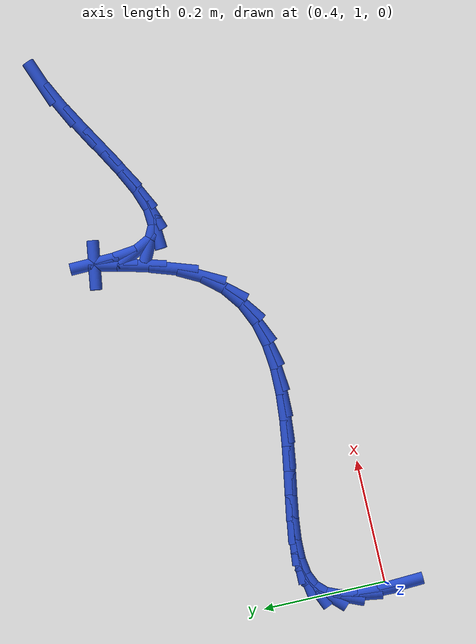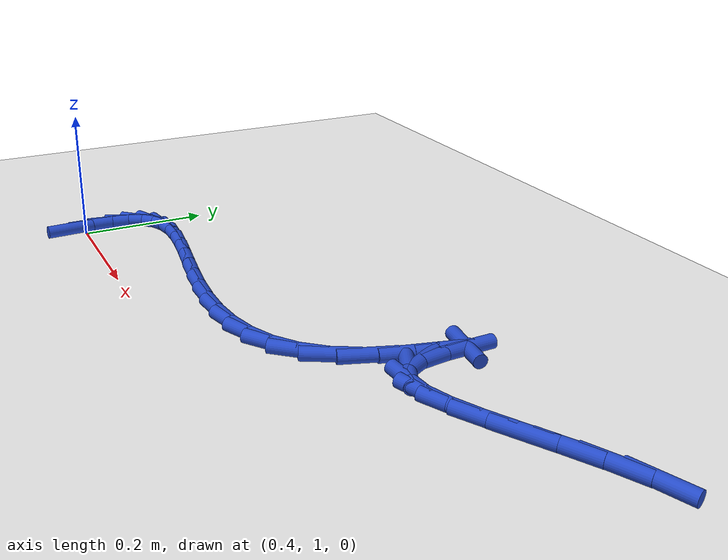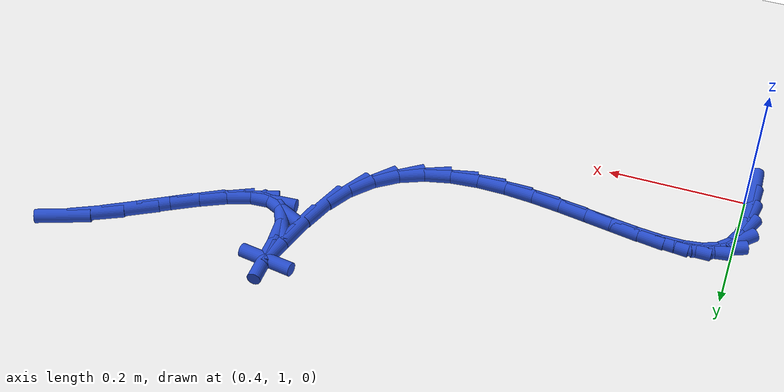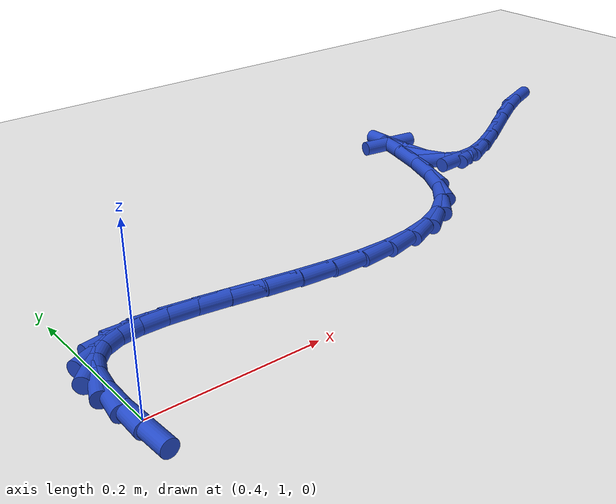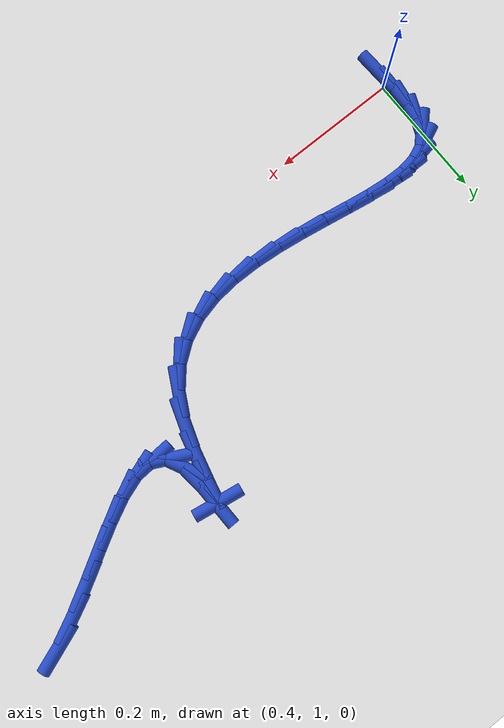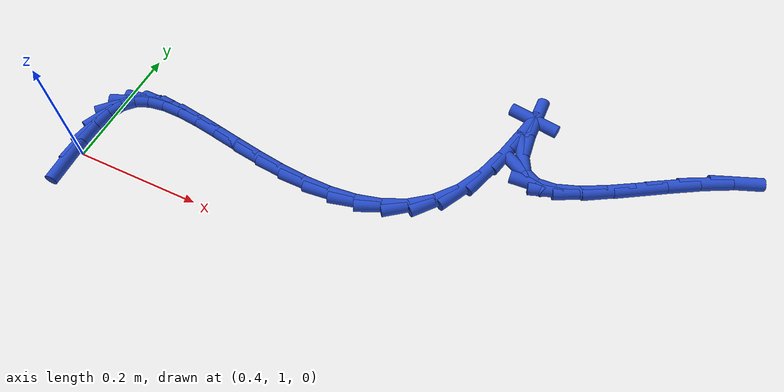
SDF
<sdf version="1.6">
 <world name="default">
  <model name="ground_plane">
   <static>1</static>
   <link name="link">
    <collision name="collision">
     <geometry><plane><normal>0 0 1</normal><size>100 100</size></plane></geometry>
     <surface><friction><ode><mu>100</mu><mu2>50</mu2></ode></friction></surface>
    </collision>
    <visual name="visual">
     <cast_shadows>0</cast_shadows>
     <geometry><plane><normal>0 0 1</normal><size>100 100</size></plane></geometry>
     <material>
      <script><uri>file://media/materials/scripts/gazebo.material</uri><name>Gazebo/WhiteGlow</name></script>
     </material>
    </visual>
   </link>
  </model>
  <model name="line">
   <link name="link_31">
    <pose>0.390982447569253 0.9789147145272856 0.01 0 1.57 -1.5247035895243215</pose>
    <collision name="collision">
     <geometry><cylinder><radius>0.01</radius><length>0.08</length></cylinder></geometry>
    </collision>
    <visual name="visual">
     <material>
      <script><name>Gazebo/Blue</name><uri>file://media/materials/scripts/gazebo.material</uri></script>
     </material>
     <geometry><cylinder><radius>0.01</radius><length>0.08</length></cylinder></geometry>
    </visual>
   </link>
   <link name="link_32">
    <pose>0.3893243388053978 1.0148625548145471 0.01 0 1.57 1.5453527774657991</pose>
    <collision name="collision">
     <geometry><cylinder><radius>0.01</radius><length>0.08</length></cylinder></geometry>
    </collision>
    <visual name="visual">
     <material>
      <script><name>Gazebo/Blue</name><uri>file://media/materials/scripts/gazebo.material</uri></script>
     </material>
     <geometry><cylinder><radius>0.01</radius><length>0.08</length></cylinder></geometry>
    </visual>
   </link>
   <link name="link_33">
    <pose>0.3901488056899858 1.0472593306489026 0.01 0 1.57 1.411977918099629</pose>
    <collision name="collision">
     <geometry><cylinder><radius>0.01</radius><length>0.08</length></cylinder></geometry>
    </collision>
    <visual name="visual">
     <material>
      <script><name>Gazebo/Blue</name><uri>file://media/materials/scripts/gazebo.material</uri></script>
     </material>
     <geometry><cylinder><radius>0.01</radius><length>0.08</length></cylinder></geometry>
    </visual>
   </link>
   <link name="link_34">
    <pose>0.39460465277649315 1.075079280934882 0.01 0 1.57 1.1768186514291217</pose>
    <collision name="collision">
     <geometry><cylinder><radius>0.01</radius><length>0.08</length></cylinder></geometry>
    </collision>
    <visual name="visual">
     <material>
      <script><name>Gazebo/Blue</name><uri>file://media/materials/scripts/gazebo.material</uri></script>
     </material>
     <geometry><cylinder><radius>0.01</radius><length>0.08</length></cylinder></geometry>
    </visual>
   </link>
   <link name="link_35">
    <pose>0.40384068461839656 1.0972966445770143 0.01 0 1.57 0.8036534141712126</pose>
    <collision name="collision">
     <geometry><cylinder><radius>0.01</radius><length>0.08</length></cylinder></geometry>
    </collision>
    <visual name="visual">
     <material>
      <script><name>Gazebo/Blue</name><uri>file://media/materials/scripts/gazebo.material</uri></script>
     </material>
     <geometry><cylinder><radius>0.01</radius><length>0.08</length></cylinder></geometry>
    </visual>
   </link>
   <link name="link_36">
    <pose>0.4189405103541768 1.112958087372414 0.01 0 1.57 0.4150669243652497</pose>
    <collision name="collision">
     <geometry><cylinder><radius>0.01</radius><length>0.08</length></cylinder></geometry>
    </collision>
    <visual name="visual">
     <material>
      <script><name>Gazebo/Blue</name><uri>file://media/materials/scripts/gazebo.material</uri></script>
     </material>
     <geometry><cylinder><radius>0.01</radius><length>0.08</length></cylinder></geometry>
    </visual>
   </link>
   <link name="link_37">
    <pose>0.4399801688791699 1.1222296050860623 0.01 0 1.57 0.14845639626658577</pose>
    <collision name="collision">
     <geometry><cylinder><radius>0.01</radius><length>0.08</length></cylinder></geometry>
    </collision>
    <visual name="visual">
     <material>
      <script><name>Gazebo/Blue</name><uri>file://media/materials/scripts/gazebo.material</uri></script>
     </material>
     <geometry><cylinder><radius>0.01</radius><length>0.08</length></cylinder></geometry>
    </visual>
   </link>
   <link name="link_38">
    <pose>0.4662433417337023 1.126157439141993 0.01 0 1.57 -0.011247543446740244</pose>
    <collision name="collision">
     <geometry><cylinder><radius>0.01</radius><length>0.08</length></cylinder></geometry>
    </collision>
    <visual name="visual">
     <material>
      <script><name>Gazebo/Blue</name><uri>file://media/materials/scripts/gazebo.material</uri></script>
     </material>
     <geometry><cylinder><radius>0.01</radius><length>0.08</length></cylinder></geometry>
    </visual>
   </link>
   <link name="link_39">
    <pose>0.4969923381550465 1.1258115738838583 0.01 0 1.57 -0.1025341059133014</pose>
    <collision name="collision">
     <geometry><cylinder><radius>0.01</radius><length>0.08</length></cylinder></geometry>
    </collision>
    <visual name="visual">
     <material>
      <script><name>Gazebo/Blue</name><uri>file://media/materials/scripts/gazebo.material</uri></script>
     </material>
     <geometry><cylinder><radius>0.01</radius><length>0.08</length></cylinder></geometry>
    </visual>
   </link>
   <link name="link_40">
    <pose>0.531489467380474 1.1222619936553102 0.01 0 1.57 -0.15038043305676224</pose>
    <collision name="collision">
     <geometry><cylinder><radius>0.01</radius><length>0.08</length></cylinder></geometry>
    </collision>
    <visual name="visual">
     <material>
      <script><name>Gazebo/Blue</name><uri>file://media/materials/scripts/gazebo.material</uri></script>
     </material>
     <geometry><cylinder><radius>0.01</radius><length>0.08</length></cylinder></geometry>
    </visual>
   </link>
   <link name="link_41">
    <pose>0.5689970386472569 1.1165786828 0.01 0 1.57 -0.16800905003659292</pose>
    <collision name="collision">
     <geometry><cylinder><radius>0.01</radius><length>0.08</length></cylinder></geometry>
    </collision>
    <visual name="visual">
     <material>
      <script><name>Gazebo/Blue</name><uri>file://media/materials/scripts/gazebo.material</uri></script>
     </material>
     <geometry><cylinder><radius>0.01</radius><length>0.08</length></cylinder></geometry>
    </visual>
   </link>
   <link name="link_42">
    <pose>0.6087773611926669 1.10983162566158 0.01 0 1.57 -0.161730169987351</pose>
    <collision name="collision">
     <geometry><cylinder><radius>0.01</radius><length>0.08</length></cylinder></geometry>
    </collision>
    <visual name="visual">
     <material>
      <script><name>Gazebo/Blue</name><uri>file://media/materials/scripts/gazebo.material</uri></script>
     </material>
     <geometry><cylinder><radius>0.01</radius><length>0.08</length></cylinder></geometry>
    </visual>
   </link>
   <link name="link_43">
    <pose>0.6500927442539758 1.1030908065837022 0.01 0 1.57 -0.1337077071958004</pose>
    <collision name="collision">
     <geometry><cylinder><radius>0.01</radius><length>0.08</length></cylinder></geometry>
    </collision>
    <visual name="visual">
     <material>
      <script><name>Gazebo/Blue</name><uri>file://media/materials/scripts/gazebo.material</uri></script>
     </material>
     <geometry><cylinder><radius>0.01</radius><length>0.08</length></cylinder></geometry>
    </visual>
   </link>
   <link name="link_44">
    <pose>0.6922054970684561 1.0974262099100183 0.01 0 1.57 -0.08323591101266663</pose>
    <collision name="collision">
     <geometry><cylinder><radius>0.01</radius><length>0.08</length></cylinder></geometry>
    </collision>
    <visual name="visual">
     <material>
      <script><name>Gazebo/Blue</name><uri>file://media/materials/scripts/gazebo.material</uri></script>
     </material>
     <geometry><cylinder><radius>0.01</radius><length>0.08</length></cylinder></geometry>
    </visual>
   </link>
   <link name="link_45">
    <pose>0.7343779288733792 1.0939078199841799 0.01 0 1.57 -0.007282750099045498</pose>
    <collision name="collision">
     <geometry><cylinder><radius>0.01</radius><length>0.08</length></cylinder></geometry>
    </collision>
    <visual name="visual">
     <material>
      <script><name>Gazebo/Blue</name><uri>file://media/materials/scripts/gazebo.material</uri></script>
     </material>
     <geometry><cylinder><radius>0.01</radius><length>0.08</length></cylinder></geometry>
    </visual>
   </link>
   <link name="link_46">
    <pose>0.7758723489060166 1.0936056211498393 0.01 0 1.57 0.09907831530717444</pose>
    <collision name="collision">
     <geometry><cylinder><radius>0.01</radius><length>0.08</length></cylinder></geometry>
    </collision>
    <visual name="visual">
     <material>
      <script><name>Gazebo/Blue</name><uri>file://media/materials/scripts/gazebo.material</uri></script>
     </material>
     <geometry><cylinder><radius>0.01</radius><length>0.08</length></cylinder></geometry>
    </visual>
   </link>
   <link name="link_47">
    <pose>0.8159510664036412 1.0975895977506478 0.01 0 1.57 0.24147163791698817</pose>
    <collision name="collision">
     <geometry><cylinder><radius>0.01</radius><length>0.08</length></cylinder></geometry>
    </collision>
    <visual name="visual">
     <material>
      <script><name>Gazebo/Blue</name><uri>file://media/materials/scripts/gazebo.material</uri></script>
     </material>
     <geometry><cylinder><radius>0.01</radius><length>0.08</length></cylinder></geometry>
    </visual>
   </link>
   <link name="link_48">
    <pose>0.8538763906035245 1.106929734130258 0.01 0 1.57 0.4228746348597719</pose>
    <collision name="collision">
     <geometry><cylinder><radius>0.01</radius><length>0.08</length></cylinder></geometry>
    </collision>
    <visual name="visual">
     <material>
      <script><name>Gazebo/Blue</name><uri>file://media/materials/scripts/gazebo.material</uri></script>
     </material>
     <geometry><cylinder><radius>0.01</radius><length>0.08</length></cylinder></geometry>
    </visual>
   </link>
   <link name="link_49">
    <pose>0.8889106307429382 1.1226960146323213 0.01 0 1.57 0.6375303209361082</pose>
    <collision name="collision">
     <geometry><cylinder><radius>0.01</radius><length>0.08</length></cylinder></geometry>
    </collision>
    <visual name="visual">
     <material>
      <script><name>Gazebo/Blue</name><uri>file://media/materials/scripts/gazebo.material</uri></script>
     </material>
     <geometry><cylinder><radius>0.01</radius><length>0.08</length></cylinder></geometry>
    </visual>
   </link>
   <link name="link_50">
    <pose>0.9203160960591543 1.1459584236004896 0.01 0 1.57 0.8665803744971301</pose>
    <collision name="collision">
     <geometry><cylinder><radius>0.01</radius><length>0.08</length></cylinder></geometry>
    </collision>
    <visual name="visual">
     <material>
      <script><name>Gazebo/Blue</name><uri>file://media/materials/scripts/gazebo.material</uri></script>
     </material>
     <geometry><cylinder><radius>0.01</radius><length>0.08</length></cylinder></geometry>
    </visual>
   </link>
   <link name="link_51">
    <pose>0.9473550957894448 1.1777869453784149 0.01 0 1.57 1.084192181204953</pose>
    <collision name="collision">
     <geometry><cylinder><radius>0.01</radius><length>0.08</length></cylinder></geometry>
    </collision>
    <visual name="visual">
     <material>
      <script><name>Gazebo/Blue</name><uri>file://media/materials/scripts/gazebo.material</uri></script>
     </material>
     <geometry><cylinder><radius>0.01</radius><length>0.08</length></cylinder></geometry>
    </visual>
   </link>
   <link name="link_52">
    <pose>0.9692901415719178 1.2192493929146635 0.01 0 1.57 1.248725836965864</pose>
    <collision name="collision">
     <geometry><cylinder><radius>0.01</radius><length>0.08</length></cylinder></geometry>
    </collision>
    <visual name="visual">
     <material>
      <script><name>Gazebo/Blue</name><uri>file://media/materials/scripts/gazebo.material</uri></script>
     </material>
     <geometry><cylinder><radius>0.01</radius><length>0.08</length></cylinder></geometry>
    </visual>
   </link>
   <link name="link_53">
    <pose>0.9856704347898763 1.2683379164565447 0.01 0 1.57 1.3287912689701837</pose>
    <collision name="collision">
     <geometry><cylinder><radius>0.01</radius><length>0.08</length></cylinder></geometry>
    </collision>
    <visual name="visual">
     <material>
      <script><name>Gazebo/Blue</name><uri>file://media/materials/scripts/gazebo.material</uri></script>
     </material>
     <geometry><cylinder><radius>0.01</radius><length>0.08</length></cylinder></geometry>
    </visual>
   </link>
   <link name="link_54">
    <pose>0.996902928241898 1.3138425441694352 0.01 0 1.57 1.3453167303175664</pose>
    <collision name="collision">
     <geometry><cylinder><radius>0.01</radius><length>0.08</length></cylinder></geometry>
    </collision>
    <visual name="visual">
     <material>
      <script><name>Gazebo/Blue</name><uri>file://media/materials/scripts/gazebo.material</uri></script>
     </material>
     <geometry><cylinder><radius>0.01</radius><length>0.08</length></cylinder></geometry>
    </visual>
   </link>
   <link name="link_55">
    <pose>1.0035543027198472 1.3428397115997508 0.01 0 1.57 -0.1525639041829774</pose>
    <collision name="collision">
     <geometry><cylinder><radius>0.01</radius><length>0.08</length></cylinder></geometry>
    </collision>
    <visual name="visual">
     <material>
      <script><name>Gazebo/Blue</name><uri>file://media/materials/scripts/gazebo.material</uri></script>
     </material>
     <geometry><cylinder><radius>0.01</radius><length>0.08</length></cylinder></geometry>
    </visual>
   </link>
   <link name="link_56">
    <pose>1.00619513793922 1.3424336601859812 0.01 0 1.57 -1.549513623553215</pose>
    <collision name="collision">
     <geometry><cylinder><radius>0.01</radius><length>0.08</length></cylinder></geometry>
    </collision>
    <visual name="visual">
     <material>
      <script><name>Gazebo/Blue</name><uri>file://media/materials/scripts/gazebo.material</uri></script>
     </material>
     <geometry><cylinder><radius>0.01</radius><length>0.08</length></cylinder></geometry>
    </visual>
   </link>
   <link name="link_57">
    <pose>1.0068790258110933 1.3103050060140167 0.01 0 1.57 -1.4582031845294052</pose>
    <collision name="collision">
     <geometry><cylinder><radius>0.01</radius><length>0.08</length></cylinder></geometry>
    </collision>
    <visual name="visual">
     <material>
      <script><name>Gazebo/Blue</name><uri>file://media/materials/scripts/gazebo.material</uri></script>
     </material>
     <geometry><cylinder><radius>0.01</radius><length>0.08</length></cylinder></geometry>
    </visual>
   </link>
   <link name="link_58">
    <pose>1.0113692427907868 1.2705936492558776 0.01 0 1.57 -1.1039511954821721</pose>
    <collision name="collision">
     <geometry><cylinder><radius>0.01</radius><length>0.08</length></cylinder></geometry>
    </collision>
    <visual name="visual">
     <material>
      <script><name>Gazebo/Blue</name><uri>file://media/materials/scripts/gazebo.material</uri></script>
     </material>
     <geometry><cylinder><radius>0.01</radius><length>0.08</length></cylinder></geometry>
    </visual>
   </link>
   <link name="link_59">
    <pose>1.0243493915601605 1.244839555315182 0.01 0 1.57 -0.46505238405204813</pose>
    <collision name="collision">
     <geometry><cylinder><radius>0.01</radius><length>0.08</length></cylinder></geometry>
    </collision>
    <visual name="visual">
     <material>
      <script><name>Gazebo/Blue</name><uri>file://media/materials/scripts/gazebo.material</uri></script>
     </material>
     <geometry><cylinder><radius>0.01</radius><length>0.08</length></cylinder></geometry>
    </visual>
   </link>
   <link name="link_60">
    <pose>1.0454705786687613 1.2342418475220112 0.01 0 1.57 0.0676781002996856</pose>
    <collision name="collision">
     <geometry><cylinder><radius>0.01</radius><length>0.08</length></cylinder></geometry>
    </collision>
    <visual name="visual">
     <material>
      <script><name>Gazebo/Blue</name><uri>file://media/materials/scripts/gazebo.material</uri></script>
     </material>
     <geometry><cylinder><radius>0.01</radius><length>0.08</length></cylinder></geometry>
    </visual>
   </link>
   <link name="link_61">
    <pose>1.0734282244914604 1.2361368620249322 0.01 0 1.57 0.3367476848698128</pose>
    <collision name="collision">
     <geometry><cylinder><radius>0.01</radius><length>0.08</length></cylinder></geometry>
    </collision>
    <visual name="visual">
     <material>
      <script><name>Gazebo/Blue</name><uri>file://media/materials/scripts/gazebo.material</uri></script>
     </material>
     <geometry><cylinder><radius>0.01</radius><length>0.08</length></cylinder></geometry>
    </visual>
   </link>
   <link name="link_62">
    <pose>1.1069177494031317 1.2478609349725167 0.01 0 1.57 0.46430609760443864</pose>
    <collision name="collision">
     <geometry><cylinder><radius>0.01</radius><length>0.08</length></cylinder></geometry>
    </collision>
    <visual name="visual">
     <material>
      <script><name>Gazebo/Blue</name><uri>file://media/materials/scripts/gazebo.material</uri></script>
     </material>
     <geometry><cylinder><radius>0.01</radius><length>0.08</length></cylinder></geometry>
    </visual>
   </link>
   <link name="link_63">
    <pose>1.1446345737786479 1.266750402513332 0.01 0 1.57 0.522268012151314</pose>
    <collision name="collision">
     <geometry><cylinder><radius>0.01</radius><length>0.08</length></cylinder></geometry>
    </collision>
    <visual name="visual">
     <material>
      <script><name>Gazebo/Blue</name><uri>file://media/materials/scripts/gazebo.material</uri></script>
     </material>
     <geometry><cylinder><radius>0.01</radius><length>0.08</length></cylinder></geometry>
    </visual>
   </link>
   <link name="link_64">
    <pose>1.1852741179928812 1.2901416007959492 0.01 0 1.57 0.5382356035446642</pose>
    <collision name="collision">
     <geometry><cylinder><radius>0.01</radius><length>0.08</length></cylinder></geometry>
    </collision>
    <visual name="visual">
     <material>
      <script><name>Gazebo/Blue</name><uri>file://media/materials/scripts/gazebo.material</uri></script>
     </material>
     <geometry><cylinder><radius>0.01</radius><length>0.08</length></cylinder></geometry>
    </visual>
   </link>
   <link name="link_65">
    <pose>1.2275318024207047 1.3153708659689367 0.01 0 1.57 0.5205128452473726</pose>
    <collision name="collision">
     <geometry><cylinder><radius>0.01</radius><length>0.08</length></cylinder></geometry>
    </collision>
    <visual name="visual">
     <material>
      <script><name>Gazebo/Blue</name><uri>file://media/materials/scripts/gazebo.material</uri></script>
     </material>
     <geometry><cylinder><radius>0.01</radius><length>0.08</length></cylinder></geometry>
    </visual>
   </link>
   <link name="link_66">
    <pose>1.270103047436991 1.3397745341808638 0.01 0 1.57 0.46603616227903977</pose>
    <collision name="collision">
     <geometry><cylinder><radius>0.01</radius><length>0.08</length></cylinder></geometry>
    </collision>
    <visual name="visual">
     <material>
      <script><name>Gazebo/Blue</name><uri>file://media/materials/scripts/gazebo.material</uri></script>
     </material>
     <geometry><cylinder><radius>0.01</radius><length>0.08</length></cylinder></geometry>
    </visual>
   </link>
   <link name="link_67">
    <pose>1.311683273416612 1.3606889415803 0.01 0 1.57 0.3638203418146919</pose>
    <collision name="collision">
     <geometry><cylinder><radius>0.01</radius><length>0.08</length></cylinder></geometry>
    </collision>
    <visual name="visual">
     <material>
      <script><name>Gazebo/Blue</name><uri>file://media/materials/scripts/gazebo.material</uri></script>
     </material>
     <geometry><cylinder><radius>0.01</radius><length>0.08</length></cylinder></geometry>
    </visual>
   </link>
  </model>
 </world>
</sdf>
